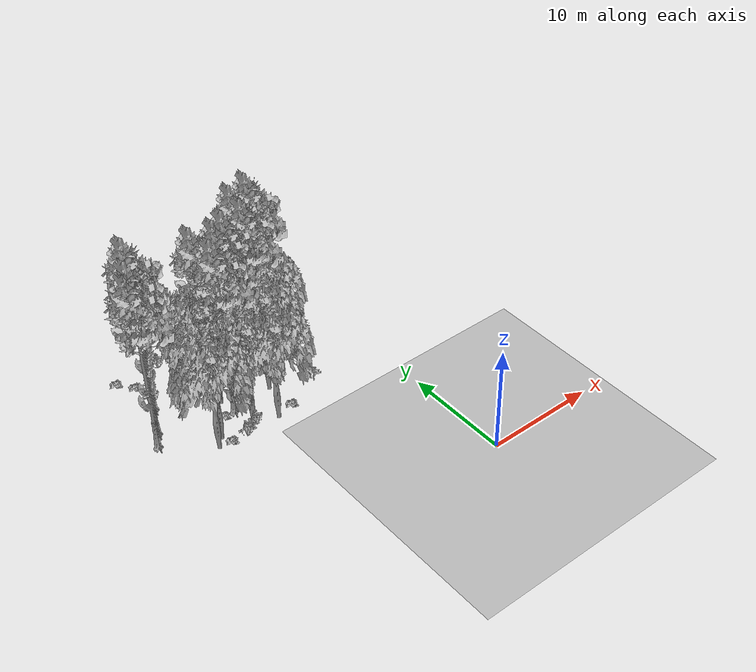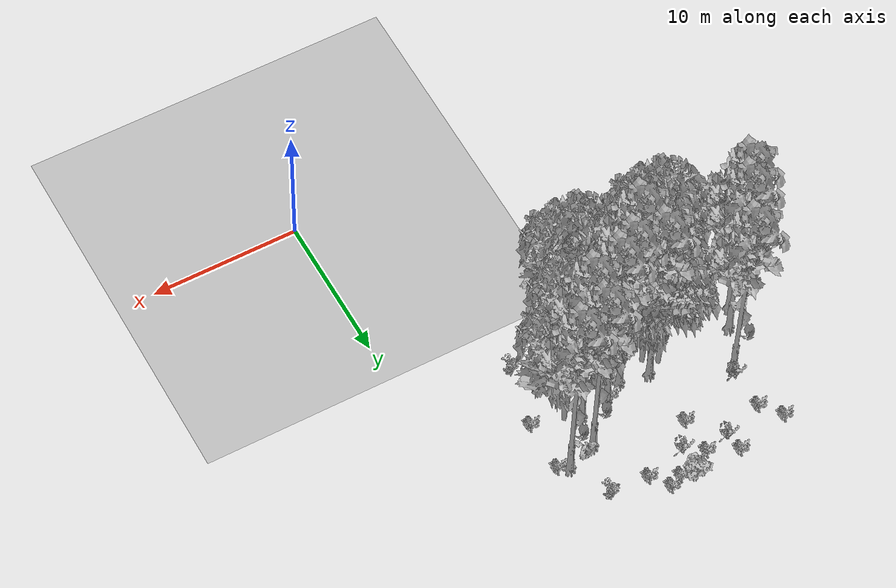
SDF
<sdf version="1.7">
 <world name="default">
  <model name="ground_plane">
   <static>1</static>
   <link name="link">
    <collision name="collision">
     <pose>-50 0 0 0 -0 0</pose>
     <geometry><plane><normal>0 0 1</normal><size>80 80</size></plane></geometry>
     <surface><contact><ode><min_depth>0.01</min_depth><max_vel>0</max_vel></ode></contact></surface>
    </collision>
    <visual name="grass">
     <cast_shadows>0</cast_shadows>
     <geometry>
      <mesh>
       <scale>0.46714285714285714 0.46714285714285714 0.1</scale>
       <uri>file://grass_plane/meshes/grass_plane.dae</uri>
      </mesh>
     </geometry>
    </visual>
   </link>
  </model>
  <model name="Tree 19">
   <static>1</static>
   <pose>-14.114522778896188 17.469039290054972 0 1.57079 -0 0</pose>
   <link name="link">
    <collision name="collision">
     <geometry><mesh><scale>3.5 5 3.5</scale><uri>model://tree_9/meshes/tree_9.obj</uri></mesh></geometry>
    </collision>
    <visual name="visual">
     <geometry><mesh><scale>3.5 5 3.5</scale><uri>model://tree_9/meshes/tree_9.obj</uri></mesh></geometry>
    </visual>
   </link>
  </model>
  <model name="Tree 27">
   <static>1</static>
   <pose>-21.33487562329011 17.980174078804943 0 1.57079 -0 0</pose>
   <link name="link">
    <collision name="collision">
     <geometry><mesh><scale>3.5 5 3.5</scale><uri>model://tree_9/meshes/tree_9.obj</uri></mesh></geometry>
    </collision>
    <visual name="visual">
     <geometry><mesh><scale>3.5 5 3.5</scale><uri>model://tree_9/meshes/tree_9.obj</uri></mesh></geometry>
    </visual>
   </link>
  </model>
  <model name="Tree 55">
   <static>1</static>
   <pose>-12.463813434640823 19.486152175347662 0 1.57079 -0 0</pose>
   <link name="link">
    <collision name="collision">
     <geometry><mesh><scale>3.5 5 3.5</scale><uri>model://tree_9/meshes/tree_9.obj</uri></mesh></geometry>
    </collision>
    <visual name="visual">
     <geometry><mesh><scale>3.5 5 3.5</scale><uri>model://tree_9/meshes/tree_9.obj</uri></mesh></geometry>
    </visual>
   </link>
  </model>
  <model name="Tree 111">
   <static>1</static>
   <pose>-10.369949730028416 17.64151823829358 0 1.57079 -0 0</pose>
   <link name="link">
    <collision name="collision">
     <geometry><mesh><scale>3.5 5 3.5</scale><uri>model://tree_2/meshes/tree_2.obj</uri></mesh></geometry>
    </collision>
    <visual name="visual">
     <geometry><mesh><scale>3.5 5 3.5</scale><uri>model://tree_2/meshes/tree_2.obj</uri></mesh></geometry>
    </visual>
   </link>
  </model>
  <model name="Tree 222">
   <static>1</static>
   <pose>-14.58602503603683 18.798939465520107 0 1.57079 -0 0</pose>
   <link name="link">
    <collision name="collision">
     <geometry><mesh><scale>3.5 5 3.5</scale><uri>model://tree_2/meshes/tree_2.obj</uri></mesh></geometry>
    </collision>
    <visual name="visual">
     <geometry><mesh><scale>3.5 5 3.5</scale><uri>model://tree_2/meshes/tree_2.obj</uri></mesh></geometry>
    </visual>
   </link>
  </model>
  <model name="Tree 263">
   <static>1</static>
   <pose>-11.831828009400617 14.211254752070388 0 1.57079 -0 0</pose>
   <link name="link">
    <collision name="collision">
     <geometry><mesh><scale>3.5 5 3.5</scale><uri>model://tree_2/meshes/tree_2.obj</uri></mesh></geometry>
    </collision>
    <visual name="visual">
     <geometry><mesh><scale>3.5 5 3.5</scale><uri>model://tree_2/meshes/tree_2.obj</uri></mesh></geometry>
    </visual>
   </link>
  </model>
  <model name="Tree 290">
   <static>1</static>
   <pose>-14.428832336349206 19.82846182924768 0 1.57079 -0 0</pose>
   <link name="link">
    <collision name="collision">
     <geometry><mesh><scale>3.5 5 3.5</scale><uri>model://tree_9/meshes/tree_9.obj</uri></mesh></geometry>
    </collision>
    <visual name="visual">
     <geometry><mesh><scale>3.5 5 3.5</scale><uri>model://tree_9/meshes/tree_9.obj</uri></mesh></geometry>
    </visual>
   </link>
  </model>
  <model name="Tree 296">
   <static>1</static>
   <pose>-14.951118739542906 19.139928189504822 0 1.57079 -0 0</pose>
   <link name="link">
    <collision name="collision">
     <geometry><mesh><scale>3.5 5 3.5</scale><uri>model://tree_2/meshes/tree_2.obj</uri></mesh></geometry>
    </collision>
    <visual name="visual">
     <geometry><mesh><scale>3.5 5 3.5</scale><uri>model://tree_2/meshes/tree_2.obj</uri></mesh></geometry>
    </visual>
   </link>
  </model>
  <model name="Tree 403">
   <static>1</static>
   <pose>-13.698579545401017 15.33847568619035 0 1.57079 -0 0</pose>
   <link name="link">
    <collision name="collision">
     <geometry><mesh><scale>3.5 5 3.5</scale><uri>model://tree_2/meshes/tree_2.obj</uri></mesh></geometry>
    </collision>
    <visual name="visual">
     <geometry><mesh><scale>3.5 5 3.5</scale><uri>model://tree_2/meshes/tree_2.obj</uri></mesh></geometry>
    </visual>
   </link>
  </model>
  <model name="Tree 411">
   <static>1</static>
   <pose>-8.227899677053756 20.156722088550616 0 1.57079 -0 0</pose>
   <link name="link">
    <collision name="collision">
     <geometry><mesh><scale>3.5 5 3.5</scale><uri>model://tree_2/meshes/tree_2.obj</uri></mesh></geometry>
    </collision>
    <visual name="visual">
     <geometry><mesh><scale>3.5 5 3.5</scale><uri>model://tree_2/meshes/tree_2.obj</uri></mesh></geometry>
    </visual>
   </link>
  </model>
  <model name="Tree 455">
   <static>1</static>
   <pose>-20.550206226767298 19.281424086463296 0 1.57079 -0 0</pose>
   <link name="link">
    <collision name="collision">
     <geometry><mesh><scale>3.5 5 3.5</scale><uri>model://tree_9/meshes/tree_9.obj</uri></mesh></geometry>
    </collision>
    <visual name="visual">
     <geometry><mesh><scale>3.5 5 3.5</scale><uri>model://tree_9/meshes/tree_9.obj</uri></mesh></geometry>
    </visual>
   </link>
  </model>
  <model name="Tree 475">
   <static>1</static>
   <pose>-17.70609329585737 14.375438907772462 0 1.57079 -0 0</pose>
   <link name="link">
    <collision name="collision">
     <geometry><mesh><scale>3.5 5 3.5</scale><uri>model://tree_2/meshes/tree_2.obj</uri></mesh></geometry>
    </collision>
    <visual name="visual">
     <geometry><mesh><scale>3.5 5 3.5</scale><uri>model://tree_2/meshes/tree_2.obj</uri></mesh></geometry>
    </visual>
   </link>
  </model>
  <model name="Tree 484">
   <static>1</static>
   <pose>-6.734817814270976 23.35915183057628 0 1.57079 -0 0</pose>
   <link name="link">
    <collision name="collision">
     <geometry><mesh><scale>3.5 5 3.5</scale><uri>model://tree_9/meshes/tree_9.obj</uri></mesh></geometry>
    </collision>
    <visual name="visual">
     <geometry><mesh><scale>3.5 5 3.5</scale><uri>model://tree_9/meshes/tree_9.obj</uri></mesh></geometry>
    </visual>
   </link>
  </model>
  <model name="Tree 502">
   <static>1</static>
   <pose>-19.185010787365968 22.01867346703323 0 1.57079 -0 0</pose>
   <link name="link">
    <collision name="collision">
     <geometry><mesh><scale>3.5 5 3.5</scale><uri>model://tree_9/meshes/tree_9.obj</uri></mesh></geometry>
    </collision>
    <visual name="visual">
     <geometry><mesh><scale>3.5 5 3.5</scale><uri>model://tree_9/meshes/tree_9.obj</uri></mesh></geometry>
    </visual>
   </link>
  </model>
  <model name="Tree 507">
   <static>1</static>
   <pose>-9.160906037017167 20.55479738250665 0 1.57079 -0 0</pose>
   <link name="link">
    <collision name="collision">
     <geometry><mesh><scale>3.5 5 3.5</scale><uri>model://tree_9/meshes/tree_9.obj</uri></mesh></geometry>
    </collision>
    <visual name="visual">
     <geometry><mesh><scale>3.5 5 3.5</scale><uri>model://tree_9/meshes/tree_9.obj</uri></mesh></geometry>
    </visual>
   </link>
  </model>
  <model name="Tree 521">
   <static>1</static>
   <pose>-15.414444505069053 19.363659793986542 0 1.57079 -0 0</pose>
   <link name="link">
    <collision name="collision">
     <geometry><mesh><scale>3.5 5 3.5</scale><uri>model://tree_2/meshes/tree_2.obj</uri></mesh></geometry>
    </collision>
    <visual name="visual">
     <geometry><mesh><scale>3.5 5 3.5</scale><uri>model://tree_2/meshes/tree_2.obj</uri></mesh></geometry>
    </visual>
   </link>
  </model>
  <model name="Tree 523">
   <static>1</static>
   <pose>-16.926286983461573 15.192122326756632 0 1.57079 -0 0</pose>
   <link name="link">
    <collision name="collision">
     <geometry><mesh><scale>3.5 5 3.5</scale><uri>model://tree_2/meshes/tree_2.obj</uri></mesh></geometry>
    </collision>
    <visual name="visual">
     <geometry><mesh><scale>3.5 5 3.5</scale><uri>model://tree_2/meshes/tree_2.obj</uri></mesh></geometry>
    </visual>
   </link>
  </model>
  <model name="Tree 548">
   <static>1</static>
   <pose>-8.73812743548131 22.664610284129907 0 1.57079 -0 0</pose>
   <link name="link">
    <collision name="collision">
     <geometry><mesh><scale>3.5 5 3.5</scale><uri>model://tree_9/meshes/tree_9.obj</uri></mesh></geometry>
    </collision>
    <visual name="visual">
     <geometry><mesh><scale>3.5 5 3.5</scale><uri>model://tree_9/meshes/tree_9.obj</uri></mesh></geometry>
    </visual>
   </link>
  </model>
  <model name="Tree 604">
   <static>1</static>
   <pose>-11.22479545686538 20.123352373182257 0 1.57079 -0 0</pose>
   <link name="link">
    <collision name="collision">
     <geometry><mesh><scale>3.5 5 3.5</scale><uri>model://tree_9/meshes/tree_9.obj</uri></mesh></geometry>
    </collision>
    <visual name="visual">
     <geometry><mesh><scale>3.5 5 3.5</scale><uri>model://tree_9/meshes/tree_9.obj</uri></mesh></geometry>
    </visual>
   </link>
  </model>
  <model name="Bush 48">
   <static>1</static>
   <pose>-14.356041084432544 14.776591708779101 0 1.57079 -0 0</pose>
   <link name="link">
    <collision name="collision">
     <geometry><mesh><scale>2 2 2</scale><uri>model://bush_2/meshes/bush_2.obj</uri></mesh></geometry>
     <surface><contact><collide_without_contact>false</collide_without_contact></contact></surface>
    </collision>
    <visual name="visual">
     <geometry><mesh><scale>2 2 2</scale><uri>model://bush_2/meshes/bush_2.obj</uri></mesh></geometry>
    </visual>
   </link>
  </model>
  <model name="Bush 52">
   <static>1</static>
   <pose>-13.638869595473341 14.72478130897347 0 1.57079 -0 0</pose>
   <link name="link">
    <collision name="collision">
     <geometry><mesh><scale>2 2 2</scale><uri>model://bush_4/meshes/bush_4.obj</uri></mesh></geometry>
     <surface><contact><collide_without_contact>false</collide_without_contact></contact></surface>
    </collision>
    <visual name="visual">
     <geometry><mesh><scale>2 2 2</scale><uri>model://bush_4/meshes/bush_4.obj</uri></mesh></geometry>
    </visual>
   </link>
  </model>
  <model name="Bush 57">
   <static>1</static>
   <pose>-11.544575672957812 20.009328439705612 0 1.57079 -0 0</pose>
   <link name="link">
    <collision name="collision">
     <geometry><mesh><scale>2 2 2</scale><uri>model://bush_2/meshes/bush_2.obj</uri></mesh></geometry>
     <surface><contact><collide_without_contact>false</collide_without_contact></contact></surface>
    </collision>
    <visual name="visual">
     <geometry><mesh><scale>2 2 2</scale><uri>model://bush_2/meshes/bush_2.obj</uri></mesh></geometry>
    </visual>
   </link>
  </model>
  <model name="Bush 93">
   <static>1</static>
   <pose>-7.724986346048393 26.572421581784127 0 1.57079 -0 0</pose>
   <link name="link">
    <collision name="collision">
     <geometry><mesh><scale>2 2 2</scale><uri>model://bush_5/meshes/bush_5.obj</uri></mesh></geometry>
     <surface><contact><collide_without_contact>false</collide_without_contact></contact></surface>
    </collision>
    <visual name="visual">
     <geometry><mesh><scale>2 2 2</scale><uri>model://bush_5/meshes/bush_5.obj</uri></mesh></geometry>
    </visual>
   </link>
  </model>
  <model name="Bush 118">
   <static>1</static>
   <pose>-7.755371014468103 23.27832329974582 0 1.57079 -0 0</pose>
   <link name="link">
    <collision name="collision">
     <geometry><mesh><scale>2 2 2</scale><uri>model://bush_0/meshes/bush_0.obj</uri></mesh></geometry>
     <surface><contact><collide_without_contact>false</collide_without_contact></contact></surface>
    </collision>
    <visual name="visual">
     <geometry><mesh><scale>2 2 2</scale><uri>model://bush_0/meshes/bush_0.obj</uri></mesh></geometry>
    </visual>
   </link>
  </model>
  <model name="Bush 235">
   <static>1</static>
   <pose>-20.301559388556825 26.34876737040065 0 1.57079 -0 0</pose>
   <link name="link">
    <collision name="collision">
     <geometry><mesh><scale>2 2 2</scale><uri>model://bush_2/meshes/bush_2.obj</uri></mesh></geometry>
     <surface><contact><collide_without_contact>false</collide_without_contact></contact></surface>
    </collision>
    <visual name="visual">
     <geometry><mesh><scale>2 2 2</scale><uri>model://bush_2/meshes/bush_2.obj</uri></mesh></geometry>
    </visual>
   </link>
  </model>
  <model name="Bush 251">
   <static>1</static>
   <pose>-6.139473340136668 22.96120883957738 0 1.57079 -0 0</pose>
   <link name="link">
    <collision name="collision">
     <geometry><mesh><scale>2 2 2</scale><uri>model://bush_2/meshes/bush_2.obj</uri></mesh></geometry>
     <surface><contact><collide_without_contact>false</collide_without_contact></contact></surface>
    </collision>
    <visual name="visual">
     <geometry><mesh><scale>2 2 2</scale><uri>model://bush_2/meshes/bush_2.obj</uri></mesh></geometry>
    </visual>
   </link>
  </model>
  <model name="Bush 279">
   <static>1</static>
   <pose>-15.333237536319324 17.100631429302872 0 1.57079 -0 0</pose>
   <link name="link">
    <collision name="collision">
     <geometry><mesh><scale>2 2 2</scale><uri>model://bush_2/meshes/bush_2.obj</uri></mesh></geometry>
     <surface><contact><collide_without_contact>false</collide_without_contact></contact></surface>
    </collision>
    <visual name="visual">
     <geometry><mesh><scale>2 2 2</scale><uri>model://bush_2/meshes/bush_2.obj</uri></mesh></geometry>
    </visual>
   </link>
  </model>
  <model name="Bush 313">
   <static>1</static>
   <pose>-6.1908894452375876 19.521626430942163 0 1.57079 -0 0</pose>
   <link name="link">
    <collision name="collision">
     <geometry><mesh><scale>2 2 2</scale><uri>model://bush_2/meshes/bush_2.obj</uri></mesh></geometry>
     <surface><contact><collide_without_contact>false</collide_without_contact></contact></surface>
    </collision>
    <visual name="visual">
     <geometry><mesh><scale>2 2 2</scale><uri>model://bush_2/meshes/bush_2.obj</uri></mesh></geometry>
    </visual>
   </link>
  </model>
  <model name="Bush 341">
   <static>1</static>
   <pose>-11.61281502289027 27.396041499812725 0 1.57079 -0 0</pose>
   <link name="link">
    <collision name="collision">
     <geometry><mesh><scale>2 2 2</scale><uri>model://bush_2/meshes/bush_2.obj</uri></mesh></geometry>
     <surface><contact><collide_without_contact>false</collide_without_contact></contact></surface>
    </collision>
    <visual name="visual">
     <geometry><mesh><scale>2 2 2</scale><uri>model://bush_2/meshes/bush_2.obj</uri></mesh></geometry>
    </visual>
   </link>
  </model>
  <model name="Bush 358">
   <static>1</static>
   <pose>-11.93249641618447 18.964229740624077 0 1.57079 -0 0</pose>
   <link name="link">
    <collision name="collision">
     <geometry><mesh><scale>2 2 2</scale><uri>model://bush_2/meshes/bush_2.obj</uri></mesh></geometry>
     <surface><contact><collide_without_contact>false</collide_without_contact></contact></surface>
    </collision>
    <visual name="visual">
     <geometry><mesh><scale>2 2 2</scale><uri>model://bush_2/meshes/bush_2.obj</uri></mesh></geometry>
    </visual>
   </link>
  </model>
  <model name="Bush 412">
   <static>1</static>
   <pose>-16.20321134449416 26.091492706151968 0 1.57079 -0 0</pose>
   <link name="link">
    <collision name="collision">
     <geometry><mesh><scale>2 2 2</scale><uri>model://bush_4/meshes/bush_4.obj</uri></mesh></geometry>
     <surface><contact><collide_without_contact>false</collide_without_contact></contact></surface>
    </collision>
    <visual name="visual">
     <geometry><mesh><scale>2 2 2</scale><uri>model://bush_4/meshes/bush_4.obj</uri></mesh></geometry>
    </visual>
   </link>
  </model>
  <model name="Bush 424">
   <static>1</static>
   <pose>-13.20122176985343 27.34034967306033 0 1.57079 -0 0</pose>
   <link name="link">
    <collision name="collision">
     <geometry><mesh><scale>2 2 2</scale><uri>model://bush_1/meshes/bush_1.obj</uri></mesh></geometry>
     <surface><contact><collide_without_contact>false</collide_without_contact></contact></surface>
    </collision>
    <visual name="visual">
     <geometry><mesh><scale>2 2 2</scale><uri>model://bush_1/meshes/bush_1.obj</uri></mesh></geometry>
    </visual>
   </link>
  </model>
  <model name="Bush 426">
   <static>1</static>
   <pose>-12.48744335569053 27.016190952888564 0 1.57079 -0 0</pose>
   <link name="link">
    <collision name="collision">
     <geometry><mesh><scale>2 2 2</scale><uri>model://bush_2/meshes/bush_2.obj</uri></mesh></geometry>
     <surface><contact><collide_without_contact>false</collide_without_contact></contact></surface>
    </collision>
    <visual name="visual">
     <geometry><mesh><scale>2 2 2</scale><uri>model://bush_2/meshes/bush_2.obj</uri></mesh></geometry>
    </visual>
   </link>
  </model>
  <model name="Bush 454">
   <static>1</static>
   <pose>-19.242394179000385 24.986230535855256 0 1.57079 -0 0</pose>
   <link name="link">
    <collision name="collision">
     <geometry><mesh><scale>2 2 2</scale><uri>model://bush_2/meshes/bush_2.obj</uri></mesh></geometry>
     <surface><contact><collide_without_contact>false</collide_without_contact></contact></surface>
    </collision>
    <visual name="visual">
     <geometry><mesh><scale>2 2 2</scale><uri>model://bush_2/meshes/bush_2.obj</uri></mesh></geometry>
    </visual>
   </link>
  </model>
  <model name="Bush 491">
   <static>1</static>
   <pose>-16.47068853145071 14.24741555748993 0 1.57079 -0 0</pose>
   <link name="link">
    <collision name="collision">
     <geometry><mesh><scale>2 2 2</scale><uri>model://bush_2/meshes/bush_2.obj</uri></mesh></geometry>
     <surface><contact><collide_without_contact>false</collide_without_contact></contact></surface>
    </collision>
    <visual name="visual">
     <geometry><mesh><scale>2 2 2</scale><uri>model://bush_2/meshes/bush_2.obj</uri></mesh></geometry>
    </visual>
   </link>
  </model>
  <model name="Bush 510">
   <static>1</static>
   <pose>-14.708136160797242 23.80752328901974 0 1.57079 -0 0</pose>
   <link name="link">
    <collision name="collision">
     <geometry><mesh><scale>2 2 2</scale><uri>model://bush_2/meshes/bush_2.obj</uri></mesh></geometry>
     <surface><contact><collide_without_contact>false</collide_without_contact></contact></surface>
    </collision>
    <visual name="visual">
     <geometry><mesh><scale>2 2 2</scale><uri>model://bush_2/meshes/bush_2.obj</uri></mesh></geometry>
    </visual>
   </link>
  </model>
  <model name="Bush 514">
   <static>1</static>
   <pose>-18.890138466762046 22.562616818795306 0 1.57079 -0 0</pose>
   <link name="link">
    <collision name="collision">
     <geometry><mesh><scale>2 2 2</scale><uri>model://bush_4/meshes/bush_4.obj</uri></mesh></geometry>
     <surface><contact><collide_without_contact>false</collide_without_contact></contact></surface>
    </collision>
    <visual name="visual">
     <geometry><mesh><scale>2 2 2</scale><uri>model://bush_4/meshes/bush_4.obj</uri></mesh></geometry>
    </visual>
   </link>
  </model>
  <model name="Bush 515">
   <static>1</static>
   <pose>-13.284885481933095 25.634096565872895 0 1.57079 -0 0</pose>
   <link name="link">
    <collision name="collision">
     <geometry><mesh><scale>2 2 2</scale><uri>model://bush_4/meshes/bush_4.obj</uri></mesh></geometry>
     <surface><contact><collide_without_contact>false</collide_without_contact></contact></surface>
    </collision>
    <visual name="visual">
     <geometry><mesh><scale>2 2 2</scale><uri>model://bush_4/meshes/bush_4.obj</uri></mesh></geometry>
    </visual>
   </link>
  </model>
  <model name="Bush 525">
   <static>1</static>
   <pose>-6.746368375941081 15.970053295709441 0 1.57079 -0 0</pose>
   <link name="link">
    <collision name="collision">
     <geometry><mesh><scale>2 2 2</scale><uri>model://bush_5/meshes/bush_5.obj</uri></mesh></geometry>
     <surface><contact><collide_without_contact>false</collide_without_contact></contact></surface>
    </collision>
    <visual name="visual">
     <geometry><mesh><scale>2 2 2</scale><uri>model://bush_5/meshes/bush_5.obj</uri></mesh></geometry>
    </visual>
   </link>
  </model>
  <model name="Bush 542">
   <static>1</static>
   <pose>-13.252409976782648 18.432137978347527 0 1.57079 -0 0</pose>
   <link name="link">
    <collision name="collision">
     <geometry><mesh><scale>2 2 2</scale><uri>model://bush_4/meshes/bush_4.obj</uri></mesh></geometry>
     <surface><contact><collide_without_contact>false</collide_without_contact></contact></surface>
    </collision>
    <visual name="visual">
     <geometry><mesh><scale>2 2 2</scale><uri>model://bush_4/meshes/bush_4.obj</uri></mesh></geometry>
    </visual>
   </link>
  </model>
  <model name="Bush 547">
   <static>1</static>
   <pose>-16.662174122233516 27.13669745697068 0 1.57079 -0 0</pose>
   <link name="link">
    <collision name="collision">
     <geometry><mesh><scale>2 2 2</scale><uri>model://bush_2/meshes/bush_2.obj</uri></mesh></geometry>
     <surface><contact><collide_without_contact>false</collide_without_contact></contact></surface>
    </collision>
    <visual name="visual">
     <geometry><mesh><scale>2 2 2</scale><uri>model://bush_2/meshes/bush_2.obj</uri></mesh></geometry>
    </visual>
   </link>
  </model>
  <model name="Bush 584">
   <static>1</static>
   <pose>-14.76520181585986 26.261486212844844 0 1.57079 -0 0</pose>
   <link name="link">
    <collision name="collision">
     <geometry><mesh><scale>2 2 2</scale><uri>model://bush_2/meshes/bush_2.obj</uri></mesh></geometry>
     <surface><contact><collide_without_contact>false</collide_without_contact></contact></surface>
    </collision>
    <visual name="visual">
     <geometry><mesh><scale>2 2 2</scale><uri>model://bush_2/meshes/bush_2.obj</uri></mesh></geometry>
    </visual>
   </link>
  </model>
  <model name="Bush 595">
   <static>1</static>
   <pose>-15.007234649972734 14.063044106979625 0 1.57079 -0 0</pose>
   <link name="link">
    <collision name="collision">
     <geometry><mesh><scale>2 2 2</scale><uri>model://bush_4/meshes/bush_4.obj</uri></mesh></geometry>
     <surface><contact><collide_without_contact>false</collide_without_contact></contact></surface>
    </collision>
    <visual name="visual">
     <geometry><mesh><scale>2 2 2</scale><uri>model://bush_4/meshes/bush_4.obj</uri></mesh></geometry>
    </visual>
   </link>
  </model>
  <model name="Bush 621">
   <static>1</static>
   <pose>-10.719907326084211 26.166202104187548 0 1.57079 -0 0</pose>
   <link name="link">
    <collision name="collision">
     <geometry><mesh><scale>2 2 2</scale><uri>model://bush_2/meshes/bush_2.obj</uri></mesh></geometry>
     <surface><contact><collide_without_contact>false</collide_without_contact></contact></surface>
    </collision>
    <visual name="visual">
     <geometry><mesh><scale>2 2 2</scale><uri>model://bush_2/meshes/bush_2.obj</uri></mesh></geometry>
    </visual>
   </link>
  </model>
  <model name="Bush 628">
   <static>1</static>
   <pose>-10.055778361326144 14.735111401773679 0 1.57079 -0 0</pose>
   <link name="link">
    <collision name="collision">
     <geometry><mesh><scale>2 2 2</scale><uri>model://bush_2/meshes/bush_2.obj</uri></mesh></geometry>
     <surface><contact><collide_without_contact>false</collide_without_contact></contact></surface>
    </collision>
    <visual name="visual">
     <geometry><mesh><scale>2 2 2</scale><uri>model://bush_2/meshes/bush_2.obj</uri></mesh></geometry>
    </visual>
   </link>
  </model>
 </world>
</sdf>
